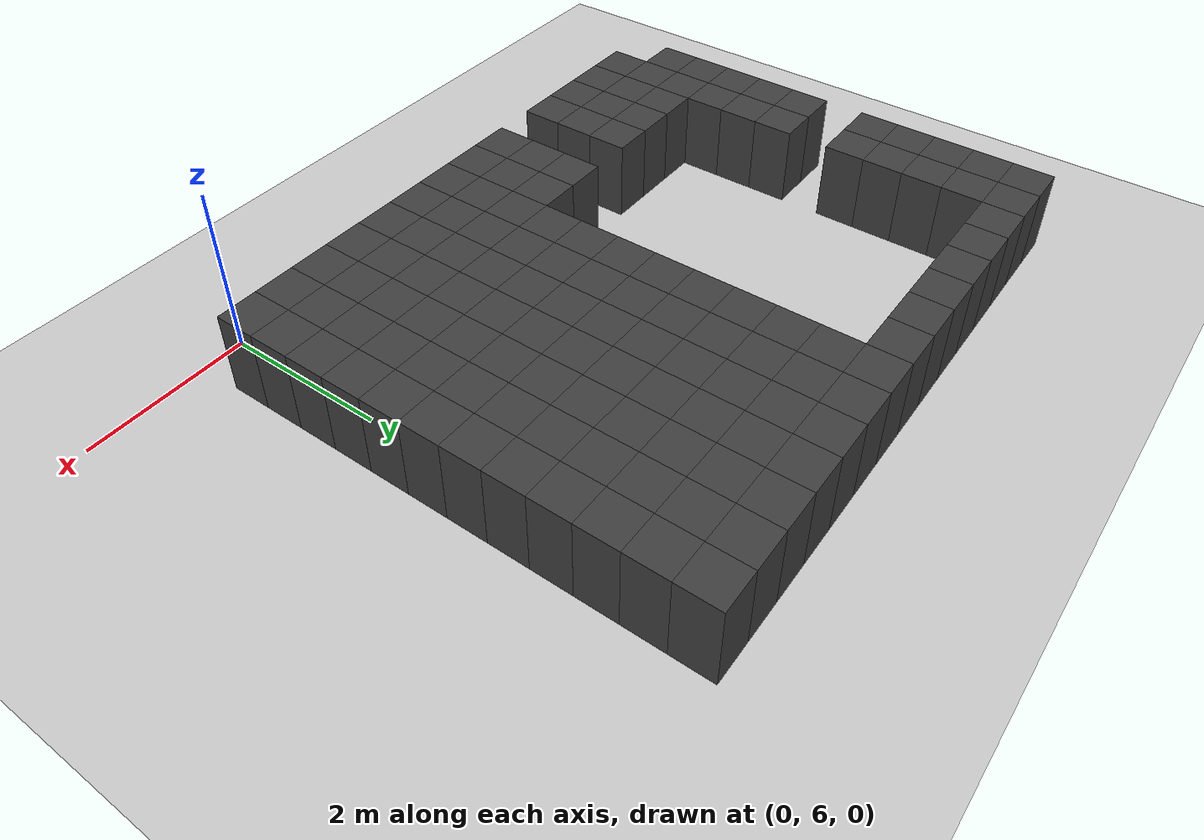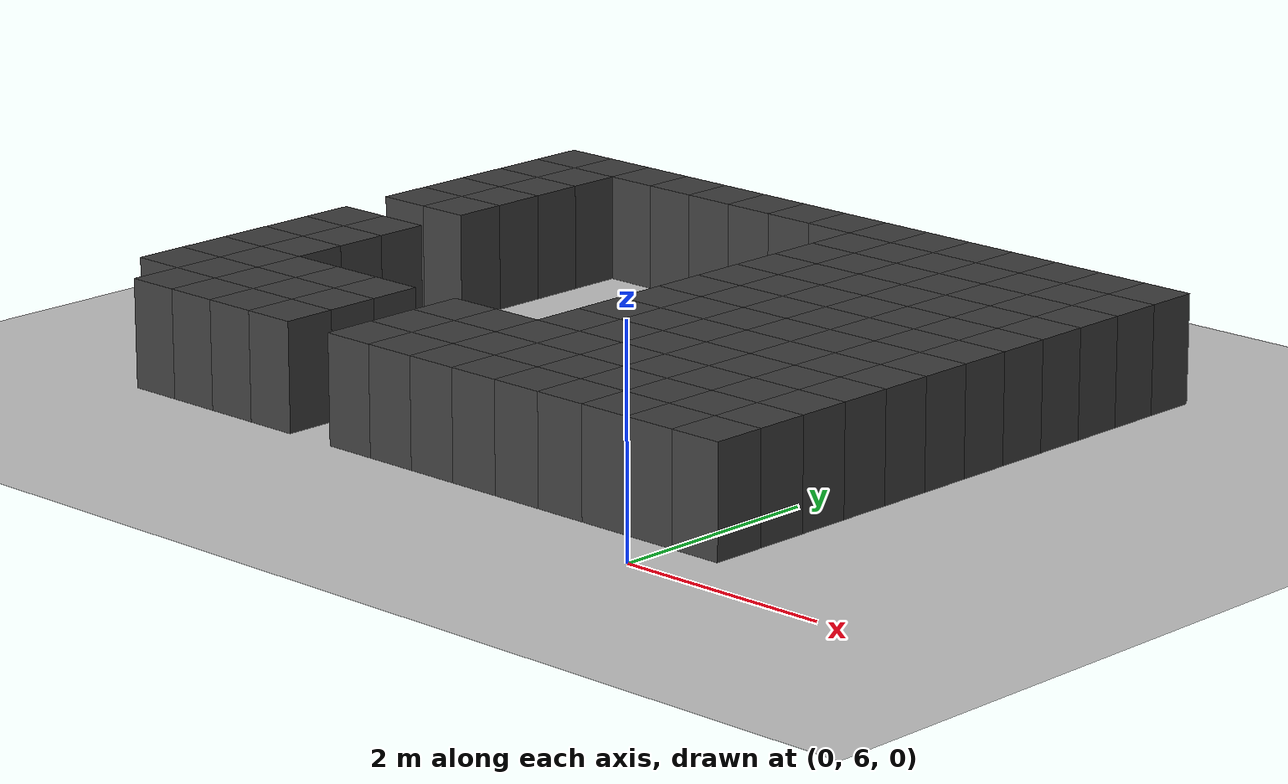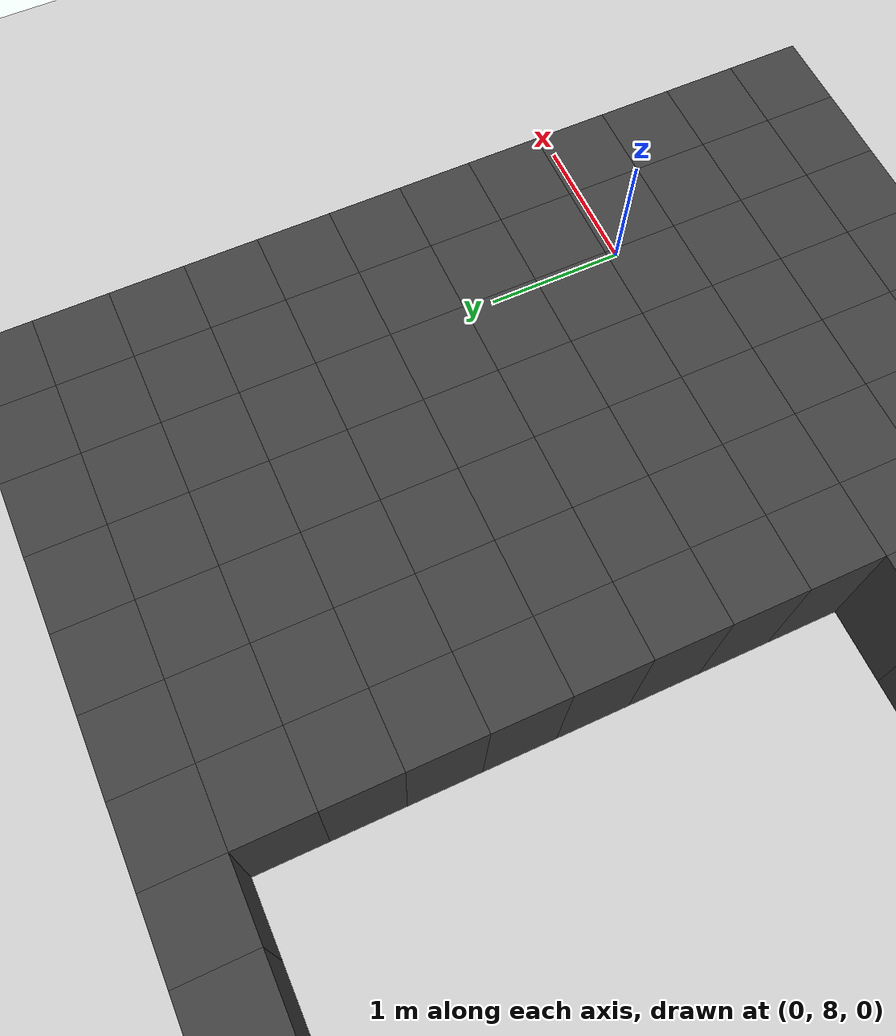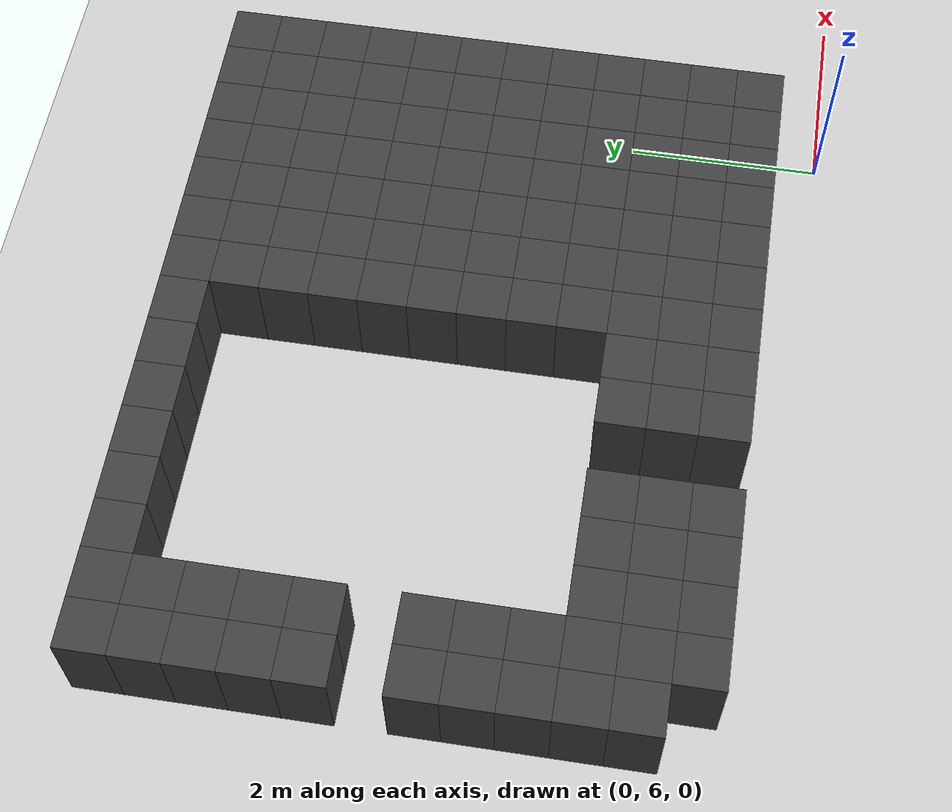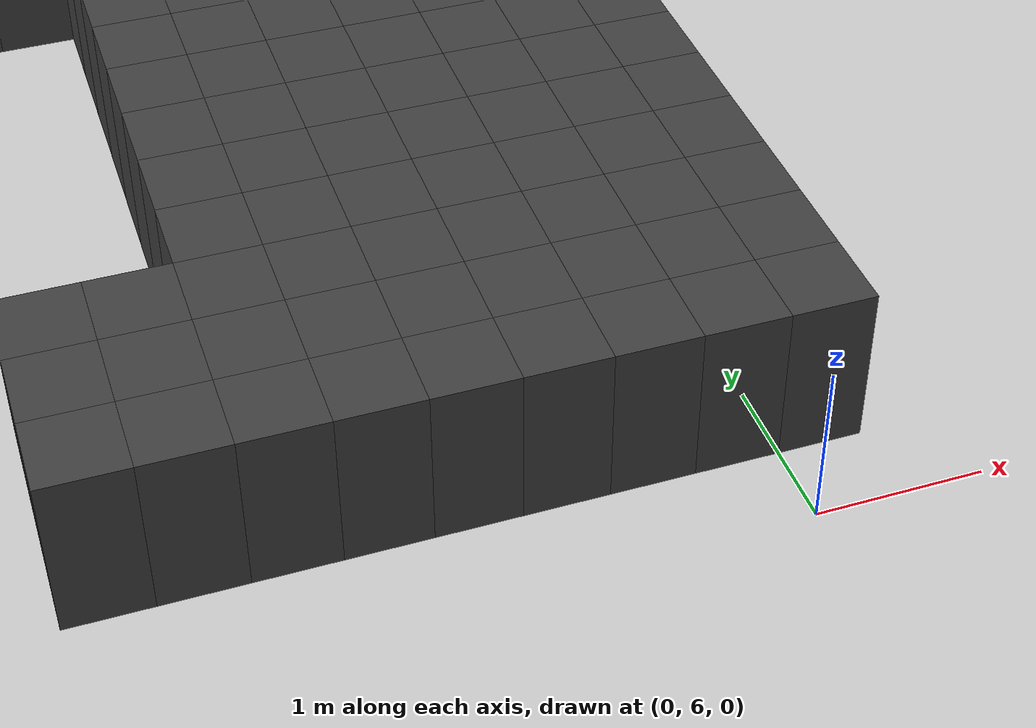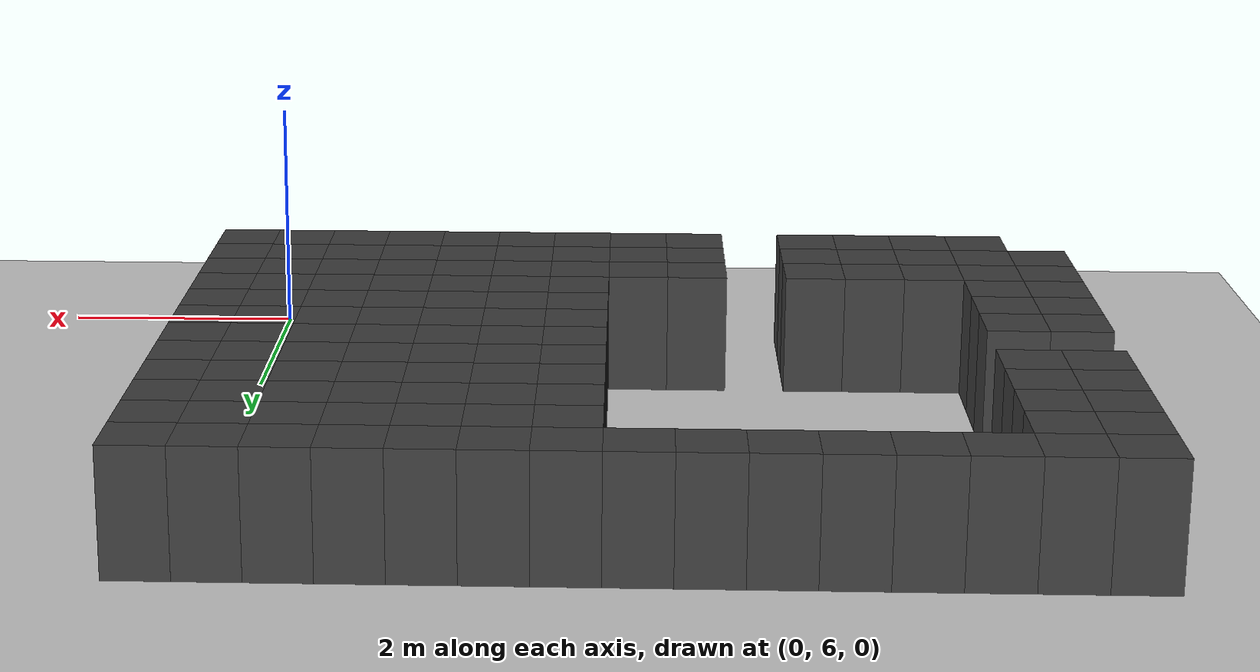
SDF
<sdf version="1.7">
 <world name="map_11779">
  <model name="ground_plane">
   <static>true</static>
   <link name="link">
    <collision name="collision">
     <geometry><plane><normal>0 0 1</normal><size>200 200</size></plane></geometry>
    </collision>
    <visual name="visual">
     <geometry><plane><normal>0 0 1</normal><size>200 200</size></plane></geometry>
     <material><ambient>0.8 0.8 0.8 1</ambient><diffuse>0.8 0.8 0.8 1</diffuse></material>
    </visual>
   </link>
  </model>
  <model name="maze_environment">
   <static>true</static>
   <link name="wall_11">
    <pose>-6.750 12.250 0.500 0 0 0</pose>
    <collision name="col"><geometry><box><size>0.5 0.5 1.0</size></box></geometry></collision>
    <visual name="vis">
     <geometry><box><size>0.5 0.5 1.0</size></box></geometry>
     <material><ambient>0.15 0.15 0.15 1</ambient><diffuse>0.25 0.25 0.25 1</diffuse></material>
    </visual>
   </link>
   <link name="wall_12">
    <pose>-6.250 12.250 0.500 0 0 0</pose>
    <collision name="col"><geometry><box><size>0.5 0.5 1.0</size></box></geometry></collision>
    <visual name="vis">
     <geometry><box><size>0.5 0.5 1.0</size></box></geometry>
     <material><ambient>0.15 0.15 0.15 1</ambient><diffuse>0.25 0.25 0.25 1</diffuse></material>
    </visual>
   </link>
   <link name="wall_13">
    <pose>-5.750 12.250 0.500 0 0 0</pose>
    <collision name="col"><geometry><box><size>0.5 0.5 1.0</size></box></geometry></collision>
    <visual name="vis">
     <geometry><box><size>0.5 0.5 1.0</size></box></geometry>
     <material><ambient>0.15 0.15 0.15 1</ambient><diffuse>0.25 0.25 0.25 1</diffuse></material>
    </visual>
   </link>
   <link name="wall_14">
    <pose>-5.250 12.250 0.500 0 0 0</pose>
    <collision name="col"><geometry><box><size>0.5 0.5 1.0</size></box></geometry></collision>
    <visual name="vis">
     <geometry><box><size>0.5 0.5 1.0</size></box></geometry>
     <material><ambient>0.15 0.15 0.15 1</ambient><diffuse>0.25 0.25 0.25 1</diffuse></material>
    </visual>
   </link>
   <link name="wall_15">
    <pose>-4.750 12.250 0.500 0 0 0</pose>
    <collision name="col"><geometry><box><size>0.5 0.5 1.0</size></box></geometry></collision>
    <visual name="vis">
     <geometry><box><size>0.5 0.5 1.0</size></box></geometry>
     <material><ambient>0.15 0.15 0.15 1</ambient><diffuse>0.25 0.25 0.25 1</diffuse></material>
    </visual>
   </link>
   <link name="wall_16">
    <pose>-4.250 12.250 0.500 0 0 0</pose>
    <collision name="col"><geometry><box><size>0.5 0.5 1.0</size></box></geometry></collision>
    <visual name="vis">
     <geometry><box><size>0.5 0.5 1.0</size></box></geometry>
     <material><ambient>0.15 0.15 0.15 1</ambient><diffuse>0.25 0.25 0.25 1</diffuse></material>
    </visual>
   </link>
   <link name="wall_17">
    <pose>-3.750 12.250 0.500 0 0 0</pose>
    <collision name="col"><geometry><box><size>0.5 0.5 1.0</size></box></geometry></collision>
    <visual name="vis">
     <geometry><box><size>0.5 0.5 1.0</size></box></geometry>
     <material><ambient>0.15 0.15 0.15 1</ambient><diffuse>0.25 0.25 0.25 1</diffuse></material>
    </visual>
   </link>
   <link name="wall_18">
    <pose>-3.250 12.250 0.500 0 0 0</pose>
    <collision name="col"><geometry><box><size>0.5 0.5 1.0</size></box></geometry></collision>
    <visual name="vis">
     <geometry><box><size>0.5 0.5 1.0</size></box></geometry>
     <material><ambient>0.15 0.15 0.15 1</ambient><diffuse>0.25 0.25 0.25 1</diffuse></material>
    </visual>
   </link>
   <link name="wall_19">
    <pose>-2.750 12.250 0.500 0 0 0</pose>
    <collision name="col"><geometry><box><size>0.5 0.5 1.0</size></box></geometry></collision>
    <visual name="vis">
     <geometry><box><size>0.5 0.5 1.0</size></box></geometry>
     <material><ambient>0.15 0.15 0.15 1</ambient><diffuse>0.25 0.25 0.25 1</diffuse></material>
    </visual>
   </link>
   <link name="wall_20">
    <pose>-2.250 12.250 0.500 0 0 0</pose>
    <collision name="col"><geometry><box><size>0.5 0.5 1.0</size></box></geometry></collision>
    <visual name="vis">
     <geometry><box><size>0.5 0.5 1.0</size></box></geometry>
     <material><ambient>0.15 0.15 0.15 1</ambient><diffuse>0.25 0.25 0.25 1</diffuse></material>
    </visual>
   </link>
   <link name="wall_21">
    <pose>-1.750 12.250 0.500 0 0 0</pose>
    <collision name="col"><geometry><box><size>0.5 0.5 1.0</size></box></geometry></collision>
    <visual name="vis">
     <geometry><box><size>0.5 0.5 1.0</size></box></geometry>
     <material><ambient>0.15 0.15 0.15 1</ambient><diffuse>0.25 0.25 0.25 1</diffuse></material>
    </visual>
   </link>
   <link name="wall_22">
    <pose>-1.250 12.250 0.500 0 0 0</pose>
    <collision name="col"><geometry><box><size>0.5 0.5 1.0</size></box></geometry></collision>
    <visual name="vis">
     <geometry><box><size>0.5 0.5 1.0</size></box></geometry>
     <material><ambient>0.15 0.15 0.15 1</ambient><diffuse>0.25 0.25 0.25 1</diffuse></material>
    </visual>
   </link>
   <link name="wall_23">
    <pose>-0.750 12.250 0.500 0 0 0</pose>
    <collision name="col"><geometry><box><size>0.5 0.5 1.0</size></box></geometry></collision>
    <visual name="vis">
     <geometry><box><size>0.5 0.5 1.0</size></box></geometry>
     <material><ambient>0.15 0.15 0.15 1</ambient><diffuse>0.25 0.25 0.25 1</diffuse></material>
    </visual>
   </link>
   <link name="wall_24">
    <pose>-0.250 12.250 0.500 0 0 0</pose>
    <collision name="col"><geometry><box><size>0.5 0.5 1.0</size></box></geometry></collision>
    <visual name="vis">
     <geometry><box><size>0.5 0.5 1.0</size></box></geometry>
     <material><ambient>0.15 0.15 0.15 1</ambient><diffuse>0.25 0.25 0.25 1</diffuse></material>
    </visual>
   </link>
   <link name="wall_25">
    <pose>0.250 12.250 0.500 0 0 0</pose>
    <collision name="col"><geometry><box><size>0.5 0.5 1.0</size></box></geometry></collision>
    <visual name="vis">
     <geometry><box><size>0.5 0.5 1.0</size></box></geometry>
     <material><ambient>0.15 0.15 0.15 1</ambient><diffuse>0.25 0.25 0.25 1</diffuse></material>
    </visual>
   </link>
   <link name="wall_58">
    <pose>-6.750 11.750 0.500 0 0 0</pose>
    <collision name="col"><geometry><box><size>0.5 0.5 1.0</size></box></geometry></collision>
    <visual name="vis">
     <geometry><box><size>0.5 0.5 1.0</size></box></geometry>
     <material><ambient>0.15 0.15 0.15 1</ambient><diffuse>0.25 0.25 0.25 1</diffuse></material>
    </visual>
   </link>
   <link name="wall_59">
    <pose>-6.250 11.750 0.500 0 0 0</pose>
    <collision name="col"><geometry><box><size>0.5 0.5 1.0</size></box></geometry></collision>
    <visual name="vis">
     <geometry><box><size>0.5 0.5 1.0</size></box></geometry>
     <material><ambient>0.15 0.15 0.15 1</ambient><diffuse>0.25 0.25 0.25 1</diffuse></material>
    </visual>
   </link>
   <link name="wall_60">
    <pose>-2.750 11.750 0.500 0 0 0</pose>
    <collision name="col"><geometry><box><size>0.5 0.5 1.0</size></box></geometry></collision>
    <visual name="vis">
     <geometry><box><size>0.5 0.5 1.0</size></box></geometry>
     <material><ambient>0.15 0.15 0.15 1</ambient><diffuse>0.25 0.25 0.25 1</diffuse></material>
    </visual>
   </link>
   <link name="wall_61">
    <pose>-2.250 11.750 0.500 0 0 0</pose>
    <collision name="col"><geometry><box><size>0.5 0.5 1.0</size></box></geometry></collision>
    <visual name="vis">
     <geometry><box><size>0.5 0.5 1.0</size></box></geometry>
     <material><ambient>0.15 0.15 0.15 1</ambient><diffuse>0.25 0.25 0.25 1</diffuse></material>
    </visual>
   </link>
   <link name="wall_62">
    <pose>-1.750 11.750 0.500 0 0 0</pose>
    <collision name="col"><geometry><box><size>0.5 0.5 1.0</size></box></geometry></collision>
    <visual name="vis">
     <geometry><box><size>0.5 0.5 1.0</size></box></geometry>
     <material><ambient>0.15 0.15 0.15 1</ambient><diffuse>0.25 0.25 0.25 1</diffuse></material>
    </visual>
   </link>
   <link name="wall_63">
    <pose>-1.250 11.750 0.500 0 0 0</pose>
    <collision name="col"><geometry><box><size>0.5 0.5 1.0</size></box></geometry></collision>
    <visual name="vis">
     <geometry><box><size>0.5 0.5 1.0</size></box></geometry>
     <material><ambient>0.15 0.15 0.15 1</ambient><diffuse>0.25 0.25 0.25 1</diffuse></material>
    </visual>
   </link>
   <link name="wall_64">
    <pose>-0.750 11.750 0.500 0 0 0</pose>
    <collision name="col"><geometry><box><size>0.5 0.5 1.0</size></box></geometry></collision>
    <visual name="vis">
     <geometry><box><size>0.5 0.5 1.0</size></box></geometry>
     <material><ambient>0.15 0.15 0.15 1</ambient><diffuse>0.25 0.25 0.25 1</diffuse></material>
    </visual>
   </link>
   <link name="wall_65">
    <pose>-0.250 11.750 0.500 0 0 0</pose>
    <collision name="col"><geometry><box><size>0.5 0.5 1.0</size></box></geometry></collision>
    <visual name="vis">
     <geometry><box><size>0.5 0.5 1.0</size></box></geometry>
     <material><ambient>0.15 0.15 0.15 1</ambient><diffuse>0.25 0.25 0.25 1</diffuse></material>
    </visual>
   </link>
   <link name="wall_66">
    <pose>0.250 11.750 0.500 0 0 0</pose>
    <collision name="col"><geometry><box><size>0.5 0.5 1.0</size></box></geometry></collision>
    <visual name="vis">
     <geometry><box><size>0.5 0.5 1.0</size></box></geometry>
     <material><ambient>0.15 0.15 0.15 1</ambient><diffuse>0.25 0.25 0.25 1</diffuse></material>
    </visual>
   </link>
   <link name="wall_99">
    <pose>-6.750 11.250 0.500 0 0 0</pose>
    <collision name="col"><geometry><box><size>0.5 0.5 1.0</size></box></geometry></collision>
    <visual name="vis">
     <geometry><box><size>0.5 0.5 1.0</size></box></geometry>
     <material><ambient>0.15 0.15 0.15 1</ambient><diffuse>0.25 0.25 0.25 1</diffuse></material>
    </visual>
   </link>
   <link name="wall_100">
    <pose>-6.250 11.250 0.500 0 0 0</pose>
    <collision name="col"><geometry><box><size>0.5 0.5 1.0</size></box></geometry></collision>
    <visual name="vis">
     <geometry><box><size>0.5 0.5 1.0</size></box></geometry>
     <material><ambient>0.15 0.15 0.15 1</ambient><diffuse>0.25 0.25 0.25 1</diffuse></material>
    </visual>
   </link>
   <link name="wall_101">
    <pose>-2.750 11.250 0.500 0 0 0</pose>
    <collision name="col"><geometry><box><size>0.5 0.5 1.0</size></box></geometry></collision>
    <visual name="vis">
     <geometry><box><size>0.5 0.5 1.0</size></box></geometry>
     <material><ambient>0.15 0.15 0.15 1</ambient><diffuse>0.25 0.25 0.25 1</diffuse></material>
    </visual>
   </link>
   <link name="wall_102">
    <pose>-2.250 11.250 0.500 0 0 0</pose>
    <collision name="col"><geometry><box><size>0.5 0.5 1.0</size></box></geometry></collision>
    <visual name="vis">
     <geometry><box><size>0.5 0.5 1.0</size></box></geometry>
     <material><ambient>0.15 0.15 0.15 1</ambient><diffuse>0.25 0.25 0.25 1</diffuse></material>
    </visual>
   </link>
   <link name="wall_103">
    <pose>-1.750 11.250 0.500 0 0 0</pose>
    <collision name="col"><geometry><box><size>0.5 0.5 1.0</size></box></geometry></collision>
    <visual name="vis">
     <geometry><box><size>0.5 0.5 1.0</size></box></geometry>
     <material><ambient>0.15 0.15 0.15 1</ambient><diffuse>0.25 0.25 0.25 1</diffuse></material>
    </visual>
   </link>
   <link name="wall_104">
    <pose>-1.250 11.250 0.500 0 0 0</pose>
    <collision name="col"><geometry><box><size>0.5 0.5 1.0</size></box></geometry></collision>
    <visual name="vis">
     <geometry><box><size>0.5 0.5 1.0</size></box></geometry>
     <material><ambient>0.15 0.15 0.15 1</ambient><diffuse>0.25 0.25 0.25 1</diffuse></material>
    </visual>
   </link>
   <link name="wall_105">
    <pose>-0.750 11.250 0.500 0 0 0</pose>
    <collision name="col"><geometry><box><size>0.5 0.5 1.0</size></box></geometry></collision>
    <visual name="vis">
     <geometry><box><size>0.5 0.5 1.0</size></box></geometry>
     <material><ambient>0.15 0.15 0.15 1</ambient><diffuse>0.25 0.25 0.25 1</diffuse></material>
    </visual>
   </link>
   <link name="wall_106">
    <pose>-0.250 11.250 0.500 0 0 0</pose>
    <collision name="col"><geometry><box><size>0.5 0.5 1.0</size></box></geometry></collision>
    <visual name="vis">
     <geometry><box><size>0.5 0.5 1.0</size></box></geometry>
     <material><ambient>0.15 0.15 0.15 1</ambient><diffuse>0.25 0.25 0.25 1</diffuse></material>
    </visual>
   </link>
   <link name="wall_107">
    <pose>0.250 11.250 0.500 0 0 0</pose>
    <collision name="col"><geometry><box><size>0.5 0.5 1.0</size></box></geometry></collision>
    <visual name="vis">
     <geometry><box><size>0.5 0.5 1.0</size></box></geometry>
     <material><ambient>0.15 0.15 0.15 1</ambient><diffuse>0.25 0.25 0.25 1</diffuse></material>
    </visual>
   </link>
   <link name="wall_140">
    <pose>-6.750 10.750 0.500 0 0 0</pose>
    <collision name="col"><geometry><box><size>0.5 0.5 1.0</size></box></geometry></collision>
    <visual name="vis">
     <geometry><box><size>0.5 0.5 1.0</size></box></geometry>
     <material><ambient>0.15 0.15 0.15 1</ambient><diffuse>0.25 0.25 0.25 1</diffuse></material>
    </visual>
   </link>
   <link name="wall_141">
    <pose>-6.250 10.750 0.500 0 0 0</pose>
    <collision name="col"><geometry><box><size>0.5 0.5 1.0</size></box></geometry></collision>
    <visual name="vis">
     <geometry><box><size>0.5 0.5 1.0</size></box></geometry>
     <material><ambient>0.15 0.15 0.15 1</ambient><diffuse>0.25 0.25 0.25 1</diffuse></material>
    </visual>
   </link>
   <link name="wall_142">
    <pose>-2.750 10.750 0.500 0 0 0</pose>
    <collision name="col"><geometry><box><size>0.5 0.5 1.0</size></box></geometry></collision>
    <visual name="vis">
     <geometry><box><size>0.5 0.5 1.0</size></box></geometry>
     <material><ambient>0.15 0.15 0.15 1</ambient><diffuse>0.25 0.25 0.25 1</diffuse></material>
    </visual>
   </link>
   <link name="wall_143">
    <pose>-2.250 10.750 0.500 0 0 0</pose>
    <collision name="col"><geometry><box><size>0.5 0.5 1.0</size></box></geometry></collision>
    <visual name="vis">
     <geometry><box><size>0.5 0.5 1.0</size></box></geometry>
     <material><ambient>0.15 0.15 0.15 1</ambient><diffuse>0.25 0.25 0.25 1</diffuse></material>
    </visual>
   </link>
   <link name="wall_144">
    <pose>-1.750 10.750 0.500 0 0 0</pose>
    <collision name="col"><geometry><box><size>0.5 0.5 1.0</size></box></geometry></collision>
    <visual name="vis">
     <geometry><box><size>0.5 0.5 1.0</size></box></geometry>
     <material><ambient>0.15 0.15 0.15 1</ambient><diffuse>0.25 0.25 0.25 1</diffuse></material>
    </visual>
   </link>
   <link name="wall_145">
    <pose>-1.250 10.750 0.500 0 0 0</pose>
    <collision name="col"><geometry><box><size>0.5 0.5 1.0</size></box></geometry></collision>
    <visual name="vis">
     <geometry><box><size>0.5 0.5 1.0</size></box></geometry>
     <material><ambient>0.15 0.15 0.15 1</ambient><diffuse>0.25 0.25 0.25 1</diffuse></material>
    </visual>
   </link>
   <link name="wall_146">
    <pose>-0.750 10.750 0.500 0 0 0</pose>
    <collision name="col"><geometry><box><size>0.5 0.5 1.0</size></box></geometry></collision>
    <visual name="vis">
     <geometry><box><size>0.5 0.5 1.0</size></box></geometry>
     <material><ambient>0.15 0.15 0.15 1</ambient><diffuse>0.25 0.25 0.25 1</diffuse></material>
    </visual>
   </link>
   <link name="wall_147">
    <pose>-0.250 10.750 0.500 0 0 0</pose>
    <collision name="col"><geometry><box><size>0.5 0.5 1.0</size></box></geometry></collision>
    <visual name="vis">
     <geometry><box><size>0.5 0.5 1.0</size></box></geometry>
     <material><ambient>0.15 0.15 0.15 1</ambient><diffuse>0.25 0.25 0.25 1</diffuse></material>
    </visual>
   </link>
   <link name="wall_148">
    <pose>0.250 10.750 0.500 0 0 0</pose>
    <collision name="col"><geometry><box><size>0.5 0.5 1.0</size></box></geometry></collision>
    <visual name="vis">
     <geometry><box><size>0.5 0.5 1.0</size></box></geometry>
     <material><ambient>0.15 0.15 0.15 1</ambient><diffuse>0.25 0.25 0.25 1</diffuse></material>
    </visual>
   </link>
   <link name="wall_183">
    <pose>-6.750 10.250 0.500 0 0 0</pose>
    <collision name="col"><geometry><box><size>0.5 0.5 1.0</size></box></geometry></collision>
    <visual name="vis">
     <geometry><box><size>0.5 0.5 1.0</size></box></geometry>
     <material><ambient>0.15 0.15 0.15 1</ambient><diffuse>0.25 0.25 0.25 1</diffuse></material>
    </visual>
   </link>
   <link name="wall_184">
    <pose>-6.250 10.250 0.500 0 0 0</pose>
    <collision name="col"><geometry><box><size>0.5 0.5 1.0</size></box></geometry></collision>
    <visual name="vis">
     <geometry><box><size>0.5 0.5 1.0</size></box></geometry>
     <material><ambient>0.15 0.15 0.15 1</ambient><diffuse>0.25 0.25 0.25 1</diffuse></material>
    </visual>
   </link>
   <link name="wall_185">
    <pose>-2.750 10.250 0.500 0 0 0</pose>
    <collision name="col"><geometry><box><size>0.5 0.5 1.0</size></box></geometry></collision>
    <visual name="vis">
     <geometry><box><size>0.5 0.5 1.0</size></box></geometry>
     <material><ambient>0.15 0.15 0.15 1</ambient><diffuse>0.25 0.25 0.25 1</diffuse></material>
    </visual>
   </link>
   <link name="wall_186">
    <pose>-2.250 10.250 0.500 0 0 0</pose>
    <collision name="col"><geometry><box><size>0.5 0.5 1.0</size></box></geometry></collision>
    <visual name="vis">
     <geometry><box><size>0.5 0.5 1.0</size></box></geometry>
     <material><ambient>0.15 0.15 0.15 1</ambient><diffuse>0.25 0.25 0.25 1</diffuse></material>
    </visual>
   </link>
   <link name="wall_187">
    <pose>-1.750 10.250 0.500 0 0 0</pose>
    <collision name="col"><geometry><box><size>0.5 0.5 1.0</size></box></geometry></collision>
    <visual name="vis">
     <geometry><box><size>0.5 0.5 1.0</size></box></geometry>
     <material><ambient>0.15 0.15 0.15 1</ambient><diffuse>0.25 0.25 0.25 1</diffuse></material>
    </visual>
   </link>
   <link name="wall_188">
    <pose>-1.250 10.250 0.500 0 0 0</pose>
    <collision name="col"><geometry><box><size>0.5 0.5 1.0</size></box></geometry></collision>
    <visual name="vis">
     <geometry><box><size>0.5 0.5 1.0</size></box></geometry>
     <material><ambient>0.15 0.15 0.15 1</ambient><diffuse>0.25 0.25 0.25 1</diffuse></material>
    </visual>
   </link>
   <link name="wall_189">
    <pose>-0.750 10.250 0.500 0 0 0</pose>
    <collision name="col"><geometry><box><size>0.5 0.5 1.0</size></box></geometry></collision>
    <visual name="vis">
     <geometry><box><size>0.5 0.5 1.0</size></box></geometry>
     <material><ambient>0.15 0.15 0.15 1</ambient><diffuse>0.25 0.25 0.25 1</diffuse></material>
    </visual>
   </link>
   <link name="wall_190">
    <pose>-0.250 10.250 0.500 0 0 0</pose>
    <collision name="col"><geometry><box><size>0.5 0.5 1.0</size></box></geometry></collision>
    <visual name="vis">
     <geometry><box><size>0.5 0.5 1.0</size></box></geometry>
     <material><ambient>0.15 0.15 0.15 1</ambient><diffuse>0.25 0.25 0.25 1</diffuse></material>
    </visual>
   </link>
   <link name="wall_191">
    <pose>0.250 10.250 0.500 0 0 0</pose>
    <collision name="col"><geometry><box><size>0.5 0.5 1.0</size></box></geometry></collision>
    <visual name="vis">
     <geometry><box><size>0.5 0.5 1.0</size></box></geometry>
     <material><ambient>0.15 0.15 0.15 1</ambient><diffuse>0.25 0.25 0.25 1</diffuse></material>
    </visual>
   </link>
   <link name="wall_218">
    <pose>-2.750 9.750 0.500 0 0 0</pose>
    <collision name="col"><geometry><box><size>0.5 0.5 1.0</size></box></geometry></collision>
    <visual name="vis">
     <geometry><box><size>0.5 0.5 1.0</size></box></geometry>
     <material><ambient>0.15 0.15 0.15 1</ambient><diffuse>0.25 0.25 0.25 1</diffuse></material>
    </visual>
   </link>
   <link name="wall_219">
    <pose>-2.250 9.750 0.500 0 0 0</pose>
    <collision name="col"><geometry><box><size>0.5 0.5 1.0</size></box></geometry></collision>
    <visual name="vis">
     <geometry><box><size>0.5 0.5 1.0</size></box></geometry>
     <material><ambient>0.15 0.15 0.15 1</ambient><diffuse>0.25 0.25 0.25 1</diffuse></material>
    </visual>
   </link>
   <link name="wall_220">
    <pose>-1.750 9.750 0.500 0 0 0</pose>
    <collision name="col"><geometry><box><size>0.5 0.5 1.0</size></box></geometry></collision>
    <visual name="vis">
     <geometry><box><size>0.5 0.5 1.0</size></box></geometry>
     <material><ambient>0.15 0.15 0.15 1</ambient><diffuse>0.25 0.25 0.25 1</diffuse></material>
    </visual>
   </link>
   <link name="wall_221">
    <pose>-1.250 9.750 0.500 0 0 0</pose>
    <collision name="col"><geometry><box><size>0.5 0.5 1.0</size></box></geometry></collision>
    <visual name="vis">
     <geometry><box><size>0.5 0.5 1.0</size></box></geometry>
     <material><ambient>0.15 0.15 0.15 1</ambient><diffuse>0.25 0.25 0.25 1</diffuse></material>
    </visual>
   </link>
   <link name="wall_222">
    <pose>-0.750 9.750 0.500 0 0 0</pose>
    <collision name="col"><geometry><box><size>0.5 0.5 1.0</size></box></geometry></collision>
    <visual name="vis">
     <geometry><box><size>0.5 0.5 1.0</size></box></geometry>
     <material><ambient>0.15 0.15 0.15 1</ambient><diffuse>0.25 0.25 0.25 1</diffuse></material>
    </visual>
   </link>
   <link name="wall_223">
    <pose>-0.250 9.750 0.500 0 0 0</pose>
    <collision name="col"><geometry><box><size>0.5 0.5 1.0</size></box></geometry></collision>
    <visual name="vis">
     <geometry><box><size>0.5 0.5 1.0</size></box></geometry>
     <material><ambient>0.15 0.15 0.15 1</ambient><diffuse>0.25 0.25 0.25 1</diffuse></material>
    </visual>
   </link>
   <link name="wall_224">
    <pose>0.250 9.750 0.500 0 0 0</pose>
    <collision name="col"><geometry><box><size>0.5 0.5 1.0</size></box></geometry></collision>
    <visual name="vis">
     <geometry><box><size>0.5 0.5 1.0</size></box></geometry>
     <material><ambient>0.15 0.15 0.15 1</ambient><diffuse>0.25 0.25 0.25 1</diffuse></material>
    </visual>
   </link>
   <link name="wall_260">
    <pose>-6.750 9.250 0.500 0 0 0</pose>
    <collision name="col"><geometry><box><size>0.5 0.5 1.0</size></box></geometry></collision>
    <visual name="vis">
     <geometry><box><size>0.5 0.5 1.0</size></box></geometry>
     <material><ambient>0.15 0.15 0.15 1</ambient><diffuse>0.25 0.25 0.25 1</diffuse></material>
    </visual>
   </link>
   <link name="wall_261">
    <pose>-6.250 9.250 0.500 0 0 0</pose>
    <collision name="col"><geometry><box><size>0.5 0.5 1.0</size></box></geometry></collision>
    <visual name="vis">
     <geometry><box><size>0.5 0.5 1.0</size></box></geometry>
     <material><ambient>0.15 0.15 0.15 1</ambient><diffuse>0.25 0.25 0.25 1</diffuse></material>
    </visual>
   </link>
   <link name="wall_262">
    <pose>-2.750 9.250 0.500 0 0 0</pose>
    <collision name="col"><geometry><box><size>0.5 0.5 1.0</size></box></geometry></collision>
    <visual name="vis">
     <geometry><box><size>0.5 0.5 1.0</size></box></geometry>
     <material><ambient>0.15 0.15 0.15 1</ambient><diffuse>0.25 0.25 0.25 1</diffuse></material>
    </visual>
   </link>
   <link name="wall_263">
    <pose>-2.250 9.250 0.500 0 0 0</pose>
    <collision name="col"><geometry><box><size>0.5 0.5 1.0</size></box></geometry></collision>
    <visual name="vis">
     <geometry><box><size>0.5 0.5 1.0</size></box></geometry>
     <material><ambient>0.15 0.15 0.15 1</ambient><diffuse>0.25 0.25 0.25 1</diffuse></material>
    </visual>
   </link>
   <link name="wall_264">
    <pose>-1.750 9.250 0.500 0 0 0</pose>
    <collision name="col"><geometry><box><size>0.5 0.5 1.0</size></box></geometry></collision>
    <visual name="vis">
     <geometry><box><size>0.5 0.5 1.0</size></box></geometry>
     <material><ambient>0.15 0.15 0.15 1</ambient><diffuse>0.25 0.25 0.25 1</diffuse></material>
    </visual>
   </link>
   <link name="wall_265">
    <pose>-1.250 9.250 0.500 0 0 0</pose>
    <collision name="col"><geometry><box><size>0.5 0.5 1.0</size></box></geometry></collision>
    <visual name="vis">
     <geometry><box><size>0.5 0.5 1.0</size></box></geometry>
     <material><ambient>0.15 0.15 0.15 1</ambient><diffuse>0.25 0.25 0.25 1</diffuse></material>
    </visual>
   </link>
   <link name="wall_266">
    <pose>-0.750 9.250 0.500 0 0 0</pose>
    <collision name="col"><geometry><box><size>0.5 0.5 1.0</size></box></geometry></collision>
    <visual name="vis">
     <geometry><box><size>0.5 0.5 1.0</size></box></geometry>
     <material><ambient>0.15 0.15 0.15 1</ambient><diffuse>0.25 0.25 0.25 1</diffuse></material>
    </visual>
   </link>
   <link name="wall_267">
    <pose>-0.250 9.250 0.500 0 0 0</pose>
    <collision name="col"><geometry><box><size>0.5 0.5 1.0</size></box></geometry></collision>
    <visual name="vis">
     <geometry><box><size>0.5 0.5 1.0</size></box></geometry>
     <material><ambient>0.15 0.15 0.15 1</ambient><diffuse>0.25 0.25 0.25 1</diffuse></material>
    </visual>
   </link>
   <link name="wall_268">
    <pose>0.250 9.250 0.500 0 0 0</pose>
    <collision name="col"><geometry><box><size>0.5 0.5 1.0</size></box></geometry></collision>
    <visual name="vis">
     <geometry><box><size>0.5 0.5 1.0</size></box></geometry>
     <material><ambient>0.15 0.15 0.15 1</ambient><diffuse>0.25 0.25 0.25 1</diffuse></material>
    </visual>
   </link>
   <link name="wall_304">
    <pose>-6.750 8.750 0.500 0 0 0</pose>
    <collision name="col"><geometry><box><size>0.5 0.5 1.0</size></box></geometry></collision>
    <visual name="vis">
     <geometry><box><size>0.5 0.5 1.0</size></box></geometry>
     <material><ambient>0.15 0.15 0.15 1</ambient><diffuse>0.25 0.25 0.25 1</diffuse></material>
    </visual>
   </link>
   <link name="wall_305">
    <pose>-6.250 8.750 0.500 0 0 0</pose>
    <collision name="col"><geometry><box><size>0.5 0.5 1.0</size></box></geometry></collision>
    <visual name="vis">
     <geometry><box><size>0.5 0.5 1.0</size></box></geometry>
     <material><ambient>0.15 0.15 0.15 1</ambient><diffuse>0.25 0.25 0.25 1</diffuse></material>
    </visual>
   </link>
   <link name="wall_306">
    <pose>-2.750 8.750 0.500 0 0 0</pose>
    <collision name="col"><geometry><box><size>0.5 0.5 1.0</size></box></geometry></collision>
    <visual name="vis">
     <geometry><box><size>0.5 0.5 1.0</size></box></geometry>
     <material><ambient>0.15 0.15 0.15 1</ambient><diffuse>0.25 0.25 0.25 1</diffuse></material>
    </visual>
   </link>
   <link name="wall_307">
    <pose>-2.250 8.750 0.500 0 0 0</pose>
    <collision name="col"><geometry><box><size>0.5 0.5 1.0</size></box></geometry></collision>
    <visual name="vis">
     <geometry><box><size>0.5 0.5 1.0</size></box></geometry>
     <material><ambient>0.15 0.15 0.15 1</ambient><diffuse>0.25 0.25 0.25 1</diffuse></material>
    </visual>
   </link>
   <link name="wall_308">
    <pose>-1.750 8.750 0.500 0 0 0</pose>
    <collision name="col"><geometry><box><size>0.5 0.5 1.0</size></box></geometry></collision>
    <visual name="vis">
     <geometry><box><size>0.5 0.5 1.0</size></box></geometry>
     <material><ambient>0.15 0.15 0.15 1</ambient><diffuse>0.25 0.25 0.25 1</diffuse></material>
    </visual>
   </link>
   <link name="wall_309">
    <pose>-1.250 8.750 0.500 0 0 0</pose>
    <collision name="col"><geometry><box><size>0.5 0.5 1.0</size></box></geometry></collision>
    <visual name="vis">
     <geometry><box><size>0.5 0.5 1.0</size></box></geometry>
     <material><ambient>0.15 0.15 0.15 1</ambient><diffuse>0.25 0.25 0.25 1</diffuse></material>
    </visual>
   </link>
   <link name="wall_310">
    <pose>-0.750 8.750 0.500 0 0 0</pose>
    <collision name="col"><geometry><box><size>0.5 0.5 1.0</size></box></geometry></collision>
    <visual name="vis">
     <geometry><box><size>0.5 0.5 1.0</size></box></geometry>
     <material><ambient>0.15 0.15 0.15 1</ambient><diffuse>0.25 0.25 0.25 1</diffuse></material>
    </visual>
   </link>
   <link name="wall_311">
    <pose>-0.250 8.750 0.500 0 0 0</pose>
    <collision name="col"><geometry><box><size>0.5 0.5 1.0</size></box></geometry></collision>
    <visual name="vis">
     <geometry><box><size>0.5 0.5 1.0</size></box></geometry>
     <material><ambient>0.15 0.15 0.15 1</ambient><diffuse>0.25 0.25 0.25 1</diffuse></material>
    </visual>
   </link>
   <link name="wall_312">
    <pose>0.250 8.750 0.500 0 0 0</pose>
    <collision name="col"><geometry><box><size>0.5 0.5 1.0</size></box></geometry></collision>
    <visual name="vis">
     <geometry><box><size>0.5 0.5 1.0</size></box></geometry>
     <material><ambient>0.15 0.15 0.15 1</ambient><diffuse>0.25 0.25 0.25 1</diffuse></material>
    </visual>
   </link>
   <link name="wall_348">
    <pose>-6.750 8.250 0.500 0 0 0</pose>
    <collision name="col"><geometry><box><size>0.5 0.5 1.0</size></box></geometry></collision>
    <visual name="vis">
     <geometry><box><size>0.5 0.5 1.0</size></box></geometry>
     <material><ambient>0.15 0.15 0.15 1</ambient><diffuse>0.25 0.25 0.25 1</diffuse></material>
    </visual>
   </link>
   <link name="wall_349">
    <pose>-6.250 8.250 0.500 0 0 0</pose>
    <collision name="col"><geometry><box><size>0.5 0.5 1.0</size></box></geometry></collision>
    <visual name="vis">
     <geometry><box><size>0.5 0.5 1.0</size></box></geometry>
     <material><ambient>0.15 0.15 0.15 1</ambient><diffuse>0.25 0.25 0.25 1</diffuse></material>
    </visual>
   </link>
   <link name="wall_350">
    <pose>-2.750 8.250 0.500 0 0 0</pose>
    <collision name="col"><geometry><box><size>0.5 0.5 1.0</size></box></geometry></collision>
    <visual name="vis">
     <geometry><box><size>0.5 0.5 1.0</size></box></geometry>
     <material><ambient>0.15 0.15 0.15 1</ambient><diffuse>0.25 0.25 0.25 1</diffuse></material>
    </visual>
   </link>
   <link name="wall_351">
    <pose>-2.250 8.250 0.500 0 0 0</pose>
    <collision name="col"><geometry><box><size>0.5 0.5 1.0</size></box></geometry></collision>
    <visual name="vis">
     <geometry><box><size>0.5 0.5 1.0</size></box></geometry>
     <material><ambient>0.15 0.15 0.15 1</ambient><diffuse>0.25 0.25 0.25 1</diffuse></material>
    </visual>
   </link>
   <link name="wall_352">
    <pose>-1.750 8.250 0.500 0 0 0</pose>
    <collision name="col"><geometry><box><size>0.5 0.5 1.0</size></box></geometry></collision>
    <visual name="vis">
     <geometry><box><size>0.5 0.5 1.0</size></box></geometry>
     <material><ambient>0.15 0.15 0.15 1</ambient><diffuse>0.25 0.25 0.25 1</diffuse></material>
    </visual>
   </link>
   <link name="wall_353">
    <pose>-1.250 8.250 0.500 0 0 0</pose>
    <collision name="col"><geometry><box><size>0.5 0.5 1.0</size></box></geometry></collision>
    <visual name="vis">
     <geometry><box><size>0.5 0.5 1.0</size></box></geometry>
     <material><ambient>0.15 0.15 0.15 1</ambient><diffuse>0.25 0.25 0.25 1</diffuse></material>
    </visual>
   </link>
   <link name="wall_354">
    <pose>-0.750 8.250 0.500 0 0 0</pose>
    <collision name="col"><geometry><box><size>0.5 0.5 1.0</size></box></geometry></collision>
    <visual name="vis">
     <geometry><box><size>0.5 0.5 1.0</size></box></geometry>
     <material><ambient>0.15 0.15 0.15 1</ambient><diffuse>0.25 0.25 0.25 1</diffuse></material>
    </visual>
   </link>
   <link name="wall_355">
    <pose>-0.250 8.250 0.500 0 0 0</pose>
    <collision name="col"><geometry><box><size>0.5 0.5 1.0</size></box></geometry></collision>
    <visual name="vis">
     <geometry><box><size>0.5 0.5 1.0</size></box></geometry>
     <material><ambient>0.15 0.15 0.15 1</ambient><diffuse>0.25 0.25 0.25 1</diffuse></material>
    </visual>
   </link>
   <link name="wall_356">
    <pose>0.250 8.250 0.500 0 0 0</pose>
    <collision name="col"><geometry><box><size>0.5 0.5 1.0</size></box></geometry></collision>
    <visual name="vis">
     <geometry><box><size>0.5 0.5 1.0</size></box></geometry>
     <material><ambient>0.15 0.15 0.15 1</ambient><diffuse>0.25 0.25 0.25 1</diffuse></material>
    </visual>
   </link>
   <link name="wall_392">
    <pose>-6.750 7.750 0.500 0 0 0</pose>
    <collision name="col"><geometry><box><size>0.5 0.5 1.0</size></box></geometry></collision>
    <visual name="vis">
     <geometry><box><size>0.5 0.5 1.0</size></box></geometry>
     <material><ambient>0.15 0.15 0.15 1</ambient><diffuse>0.25 0.25 0.25 1</diffuse></material>
    </visual>
   </link>
   <link name="wall_393">
    <pose>-6.250 7.750 0.500 0 0 0</pose>
    <collision name="col"><geometry><box><size>0.5 0.5 1.0</size></box></geometry></collision>
    <visual name="vis">
     <geometry><box><size>0.5 0.5 1.0</size></box></geometry>
     <material><ambient>0.15 0.15 0.15 1</ambient><diffuse>0.25 0.25 0.25 1</diffuse></material>
    </visual>
   </link>
   <link name="wall_394">
    <pose>-5.750 7.750 0.500 0 0 0</pose>
    <collision name="col"><geometry><box><size>0.5 0.5 1.0</size></box></geometry></collision>
    <visual name="vis">
     <geometry><box><size>0.5 0.5 1.0</size></box></geometry>
     <material><ambient>0.15 0.15 0.15 1</ambient><diffuse>0.25 0.25 0.25 1</diffuse></material>
    </visual>
   </link>
   <link name="wall_395">
    <pose>-5.250 7.750 0.500 0 0 0</pose>
    <collision name="col"><geometry><box><size>0.5 0.5 1.0</size></box></geometry></collision>
    <visual name="vis">
     <geometry><box><size>0.5 0.5 1.0</size></box></geometry>
     <material><ambient>0.15 0.15 0.15 1</ambient><diffuse>0.25 0.25 0.25 1</diffuse></material>
    </visual>
   </link>
   <link name="wall_396">
    <pose>-4.750 7.750 0.500 0 0 0</pose>
    <collision name="col"><geometry><box><size>0.5 0.5 1.0</size></box></geometry></collision>
    <visual name="vis">
     <geometry><box><size>0.5 0.5 1.0</size></box></geometry>
     <material><ambient>0.15 0.15 0.15 1</ambient><diffuse>0.25 0.25 0.25 1</diffuse></material>
    </visual>
   </link>
   <link name="wall_397">
    <pose>-3.750 7.750 0.500 0 0 0</pose>
    <collision name="col"><geometry><box><size>0.5 0.5 1.0</size></box></geometry></collision>
    <visual name="vis">
     <geometry><box><size>0.5 0.5 1.0</size></box></geometry>
     <material><ambient>0.15 0.15 0.15 1</ambient><diffuse>0.25 0.25 0.25 1</diffuse></material>
    </visual>
   </link>
   <link name="wall_398">
    <pose>-3.250 7.750 0.500 0 0 0</pose>
    <collision name="col"><geometry><box><size>0.5 0.5 1.0</size></box></geometry></collision>
    <visual name="vis">
     <geometry><box><size>0.5 0.5 1.0</size></box></geometry>
     <material><ambient>0.15 0.15 0.15 1</ambient><diffuse>0.25 0.25 0.25 1</diffuse></material>
    </visual>
   </link>
   <link name="wall_399">
    <pose>-2.750 7.750 0.500 0 0 0</pose>
    <collision name="col"><geometry><box><size>0.5 0.5 1.0</size></box></geometry></collision>
    <visual name="vis">
     <geometry><box><size>0.5 0.5 1.0</size></box></geometry>
     <material><ambient>0.15 0.15 0.15 1</ambient><diffuse>0.25 0.25 0.25 1</diffuse></material>
    </visual>
   </link>
   <link name="wall_400">
    <pose>-2.250 7.750 0.500 0 0 0</pose>
    <collision name="col"><geometry><box><size>0.5 0.5 1.0</size></box></geometry></collision>
    <visual name="vis">
     <geometry><box><size>0.5 0.5 1.0</size></box></geometry>
     <material><ambient>0.15 0.15 0.15 1</ambient><diffuse>0.25 0.25 0.25 1</diffuse></material>
    </visual>
   </link>
   <link name="wall_401">
    <pose>-1.750 7.750 0.500 0 0 0</pose>
    <collision name="col"><geometry><box><size>0.5 0.5 1.0</size></box></geometry></collision>
    <visual name="vis">
     <geometry><box><size>0.5 0.5 1.0</size></box></geometry>
     <material><ambient>0.15 0.15 0.15 1</ambient><diffuse>0.25 0.25 0.25 1</diffuse></material>
    </visual>
   </link>
   <link name="wall_402">
    <pose>-1.250 7.750 0.500 0 0 0</pose>
    <collision name="col"><geometry><box><size>0.5 0.5 1.0</size></box></geometry></collision>
    <visual name="vis">
     <geometry><box><size>0.5 0.5 1.0</size></box></geometry>
     <material><ambient>0.15 0.15 0.15 1</ambient><diffuse>0.25 0.25 0.25 1</diffuse></material>
    </visual>
   </link>
   <link name="wall_403">
    <pose>-0.750 7.750 0.500 0 0 0</pose>
    <collision name="col"><geometry><box><size>0.5 0.5 1.0</size></box></geometry></collision>
    <visual name="vis">
     <geometry><box><size>0.5 0.5 1.0</size></box></geometry>
     <material><ambient>0.15 0.15 0.15 1</ambient><diffuse>0.25 0.25 0.25 1</diffuse></material>
    </visual>
   </link>
   <link name="wall_404">
    <pose>-0.250 7.750 0.500 0 0 0</pose>
    <collision name="col"><geometry><box><size>0.5 0.5 1.0</size></box></geometry></collision>
    <visual name="vis">
     <geometry><box><size>0.5 0.5 1.0</size></box></geometry>
     <material><ambient>0.15 0.15 0.15 1</ambient><diffuse>0.25 0.25 0.25 1</diffuse></material>
    </visual>
   </link>
   <link name="wall_405">
    <pose>0.250 7.750 0.500 0 0 0</pose>
    <collision name="col"><geometry><box><size>0.5 0.5 1.0</size></box></geometry></collision>
    <visual name="vis">
     <geometry><box><size>0.5 0.5 1.0</size></box></geometry>
     <material><ambient>0.15 0.15 0.15 1</ambient><diffuse>0.25 0.25 0.25 1</diffuse></material>
    </visual>
   </link>
   <link name="wall_433">
    <pose>-6.750 7.250 0.500 0 0 0</pose>
    <collision name="col"><geometry><box><size>0.5 0.5 1.0</size></box></geometry></collision>
    <visual name="vis">
     <geometry><box><size>0.5 0.5 1.0</size></box></geometry>
     <material><ambient>0.15 0.15 0.15 1</ambient><diffuse>0.25 0.25 0.25 1</diffuse></material>
    </visual>
   </link>
   <link name="wall_434">
    <pose>-6.250 7.250 0.500 0 0 0</pose>
    <collision name="col"><geometry><box><size>0.5 0.5 1.0</size></box></geometry></collision>
    <visual name="vis">
     <geometry><box><size>0.5 0.5 1.0</size></box></geometry>
     <material><ambient>0.15 0.15 0.15 1</ambient><diffuse>0.25 0.25 0.25 1</diffuse></material>
    </visual>
   </link>
   <link name="wall_435">
    <pose>-5.750 7.250 0.500 0 0 0</pose>
    <collision name="col"><geometry><box><size>0.5 0.5 1.0</size></box></geometry></collision>
    <visual name="vis">
     <geometry><box><size>0.5 0.5 1.0</size></box></geometry>
     <material><ambient>0.15 0.15 0.15 1</ambient><diffuse>0.25 0.25 0.25 1</diffuse></material>
    </visual>
   </link>
   <link name="wall_436">
    <pose>-5.250 7.250 0.500 0 0 0</pose>
    <collision name="col"><geometry><box><size>0.5 0.5 1.0</size></box></geometry></collision>
    <visual name="vis">
     <geometry><box><size>0.5 0.5 1.0</size></box></geometry>
     <material><ambient>0.15 0.15 0.15 1</ambient><diffuse>0.25 0.25 0.25 1</diffuse></material>
    </visual>
   </link>
   <link name="wall_437">
    <pose>-4.750 7.250 0.500 0 0 0</pose>
    <collision name="col"><geometry><box><size>0.5 0.5 1.0</size></box></geometry></collision>
    <visual name="vis">
     <geometry><box><size>0.5 0.5 1.0</size></box></geometry>
     <material><ambient>0.15 0.15 0.15 1</ambient><diffuse>0.25 0.25 0.25 1</diffuse></material>
    </visual>
   </link>
   <link name="wall_438">
    <pose>-3.750 7.250 0.500 0 0 0</pose>
    <collision name="col"><geometry><box><size>0.5 0.5 1.0</size></box></geometry></collision>
    <visual name="vis">
     <geometry><box><size>0.5 0.5 1.0</size></box></geometry>
     <material><ambient>0.15 0.15 0.15 1</ambient><diffuse>0.25 0.25 0.25 1</diffuse></material>
    </visual>
   </link>
   <link name="wall_439">
    <pose>-3.250 7.250 0.500 0 0 0</pose>
    <collision name="col"><geometry><box><size>0.5 0.5 1.0</size></box></geometry></collision>
    <visual name="vis">
     <geometry><box><size>0.5 0.5 1.0</size></box></geometry>
     <material><ambient>0.15 0.15 0.15 1</ambient><diffuse>0.25 0.25 0.25 1</diffuse></material>
    </visual>
   </link>
   <link name="wall_440">
    <pose>-2.750 7.250 0.500 0 0 0</pose>
    <collision name="col"><geometry><box><size>0.5 0.5 1.0</size></box></geometry></collision>
    <visual name="vis">
     <geometry><box><size>0.5 0.5 1.0</size></box></geometry>
     <material><ambient>0.15 0.15 0.15 1</ambient><diffuse>0.25 0.25 0.25 1</diffuse></material>
    </visual>
   </link>
   <link name="wall_441">
    <pose>-2.250 7.250 0.500 0 0 0</pose>
    <collision name="col"><geometry><box><size>0.5 0.5 1.0</size></box></geometry></collision>
    <visual name="vis">
     <geometry><box><size>0.5 0.5 1.0</size></box></geometry>
     <material><ambient>0.15 0.15 0.15 1</ambient><diffuse>0.25 0.25 0.25 1</diffuse></material>
    </visual>
   </link>
   <link name="wall_442">
    <pose>-1.750 7.250 0.500 0 0 0</pose>
    <collision name="col"><geometry><box><size>0.5 0.5 1.0</size></box></geometry></collision>
    <visual name="vis">
     <geometry><box><size>0.5 0.5 1.0</size></box></geometry>
     <material><ambient>0.15 0.15 0.15 1</ambient><diffuse>0.25 0.25 0.25 1</diffuse></material>
    </visual>
   </link>
   <link name="wall_443">
    <pose>-1.250 7.250 0.500 0 0 0</pose>
    <collision name="col"><geometry><box><size>0.5 0.5 1.0</size></box></geometry></collision>
    <visual name="vis">
     <geometry><box><size>0.5 0.5 1.0</size></box></geometry>
     <material><ambient>0.15 0.15 0.15 1</ambient><diffuse>0.25 0.25 0.25 1</diffuse></material>
    </visual>
   </link>
   <link name="wall_444">
    <pose>-0.750 7.250 0.500 0 0 0</pose>
    <collision name="col"><geometry><box><size>0.5 0.5 1.0</size></box></geometry></collision>
    <visual name="vis">
     <geometry><box><size>0.5 0.5 1.0</size></box></geometry>
     <material><ambient>0.15 0.15 0.15 1</ambient><diffuse>0.25 0.25 0.25 1</diffuse></material>
    </visual>
   </link>
   <link name="wall_445">
    <pose>-0.250 7.250 0.500 0 0 0</pose>
    <collision name="col"><geometry><box><size>0.5 0.5 1.0</size></box></geometry></collision>
    <visual name="vis">
     <geometry><box><size>0.5 0.5 1.0</size></box></geometry>
     <material><ambient>0.15 0.15 0.15 1</ambient><diffuse>0.25 0.25 0.25 1</diffuse></material>
    </visual>
   </link>
   <link name="wall_446">
    <pose>0.250 7.250 0.500 0 0 0</pose>
    <collision name="col"><geometry><box><size>0.5 0.5 1.0</size></box></geometry></collision>
    <visual name="vis">
     <geometry><box><size>0.5 0.5 1.0</size></box></geometry>
     <material><ambient>0.15 0.15 0.15 1</ambient><diffuse>0.25 0.25 0.25 1</diffuse></material>
    </visual>
   </link>
   <link name="wall_475">
    <pose>-6.250 6.750 0.500 0 0 0</pose>
    <collision name="col"><geometry><box><size>0.5 0.5 1.0</size></box></geometry></collision>
    <visual name="vis">
     <geometry><box><size>0.5 0.5 1.0</size></box></geometry>
     <material><ambient>0.15 0.15 0.15 1</ambient><diffuse>0.25 0.25 0.25 1</diffuse></material>
    </visual>
   </link>
   <link name="wall_476">
    <pose>-5.750 6.750 0.500 0 0 0</pose>
    <collision name="col"><geometry><box><size>0.5 0.5 1.0</size></box></geometry></collision>
    <visual name="vis">
     <geometry><box><size>0.5 0.5 1.0</size></box></geometry>
     <material><ambient>0.15 0.15 0.15 1</ambient><diffuse>0.25 0.25 0.25 1</diffuse></material>
    </visual>
   </link>
   <link name="wall_477">
    <pose>-5.250 6.750 0.500 0 0 0</pose>
    <collision name="col"><geometry><box><size>0.5 0.5 1.0</size></box></geometry></collision>
    <visual name="vis">
     <geometry><box><size>0.5 0.5 1.0</size></box></geometry>
     <material><ambient>0.15 0.15 0.15 1</ambient><diffuse>0.25 0.25 0.25 1</diffuse></material>
    </visual>
   </link>
   <link name="wall_478">
    <pose>-4.750 6.750 0.500 0 0 0</pose>
    <collision name="col"><geometry><box><size>0.5 0.5 1.0</size></box></geometry></collision>
    <visual name="vis">
     <geometry><box><size>0.5 0.5 1.0</size></box></geometry>
     <material><ambient>0.15 0.15 0.15 1</ambient><diffuse>0.25 0.25 0.25 1</diffuse></material>
    </visual>
   </link>
   <link name="wall_479">
    <pose>-3.750 6.750 0.500 0 0 0</pose>
    <collision name="col"><geometry><box><size>0.5 0.5 1.0</size></box></geometry></collision>
    <visual name="vis">
     <geometry><box><size>0.5 0.5 1.0</size></box></geometry>
     <material><ambient>0.15 0.15 0.15 1</ambient><diffuse>0.25 0.25 0.25 1</diffuse></material>
    </visual>
   </link>
   <link name="wall_480">
    <pose>-3.250 6.750 0.500 0 0 0</pose>
    <collision name="col"><geometry><box><size>0.5 0.5 1.0</size></box></geometry></collision>
    <visual name="vis">
     <geometry><box><size>0.5 0.5 1.0</size></box></geometry>
     <material><ambient>0.15 0.15 0.15 1</ambient><diffuse>0.25 0.25 0.25 1</diffuse></material>
    </visual>
   </link>
   <link name="wall_481">
    <pose>-2.750 6.750 0.500 0 0 0</pose>
    <collision name="col"><geometry><box><size>0.5 0.5 1.0</size></box></geometry></collision>
    <visual name="vis">
     <geometry><box><size>0.5 0.5 1.0</size></box></geometry>
     <material><ambient>0.15 0.15 0.15 1</ambient><diffuse>0.25 0.25 0.25 1</diffuse></material>
    </visual>
   </link>
   <link name="wall_482">
    <pose>-2.250 6.750 0.500 0 0 0</pose>
    <collision name="col"><geometry><box><size>0.5 0.5 1.0</size></box></geometry></collision>
    <visual name="vis">
     <geometry><box><size>0.5 0.5 1.0</size></box></geometry>
     <material><ambient>0.15 0.15 0.15 1</ambient><diffuse>0.25 0.25 0.25 1</diffuse></material>
    </visual>
   </link>
   <link name="wall_483">
    <pose>-1.750 6.750 0.500 0 0 0</pose>
    <collision name="col"><geometry><box><size>0.5 0.5 1.0</size></box></geometry></collision>
    <visual name="vis">
     <geometry><box><size>0.5 0.5 1.0</size></box></geometry>
     <material><ambient>0.15 0.15 0.15 1</ambient><diffuse>0.25 0.25 0.25 1</diffuse></material>
    </visual>
   </link>
   <link name="wall_484">
    <pose>-1.250 6.750 0.500 0 0 0</pose>
    <collision name="col"><geometry><box><size>0.5 0.5 1.0</size></box></geometry></collision>
    <visual name="vis">
     <geometry><box><size>0.5 0.5 1.0</size></box></geometry>
     <material><ambient>0.15 0.15 0.15 1</ambient><diffuse>0.25 0.25 0.25 1</diffuse></material>
    </visual>
   </link>
   <link name="wall_485">
    <pose>-0.750 6.750 0.500 0 0 0</pose>
    <collision name="col"><geometry><box><size>0.5 0.5 1.0</size></box></geometry></collision>
    <visual name="vis">
     <geometry><box><size>0.5 0.5 1.0</size></box></geometry>
     <material><ambient>0.15 0.15 0.15 1</ambient><diffuse>0.25 0.25 0.25 1</diffuse></material>
    </visual>
   </link>
   <link name="wall_486">
    <pose>-0.250 6.750 0.500 0 0 0</pose>
    <collision name="col"><geometry><box><size>0.5 0.5 1.0</size></box></geometry></collision>
    <visual name="vis">
     <geometry><box><size>0.5 0.5 1.0</size></box></geometry>
     <material><ambient>0.15 0.15 0.15 1</ambient><diffuse>0.25 0.25 0.25 1</diffuse></material>
    </visual>
   </link>
   <link name="wall_487">
    <pose>0.250 6.750 0.500 0 0 0</pose>
    <collision name="col"><geometry><box><size>0.5 0.5 1.0</size></box></geometry></collision>
    <visual name="vis">
     <geometry><box><size>0.5 0.5 1.0</size></box></geometry>
     <material><ambient>0.15 0.15 0.15 1</ambient><diffuse>0.25 0.25 0.25 1</diffuse></material>
    </visual>
   </link>
  </model>
 </world>
</sdf>
